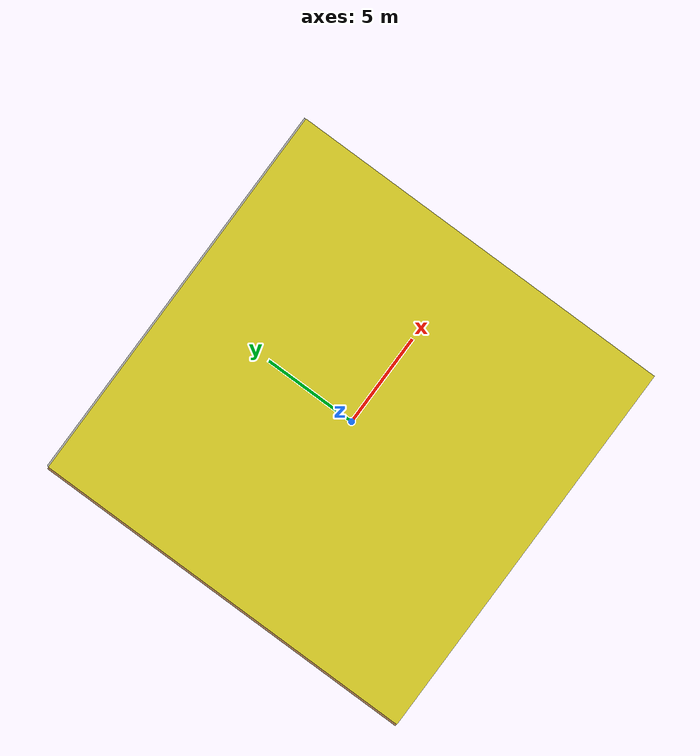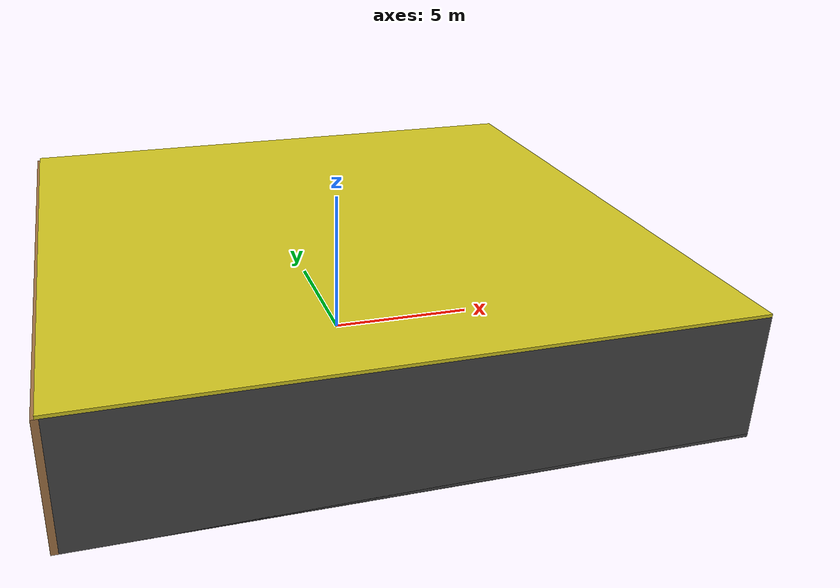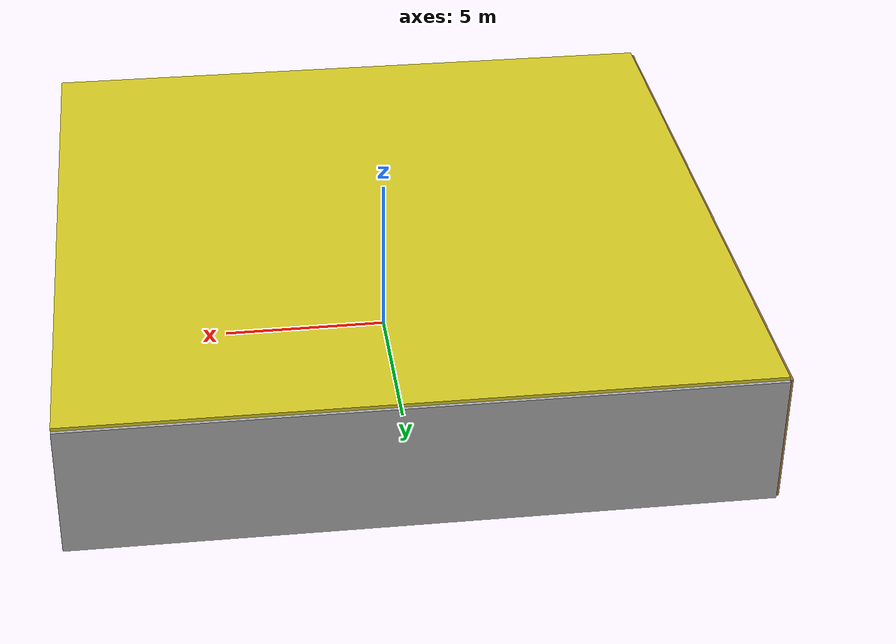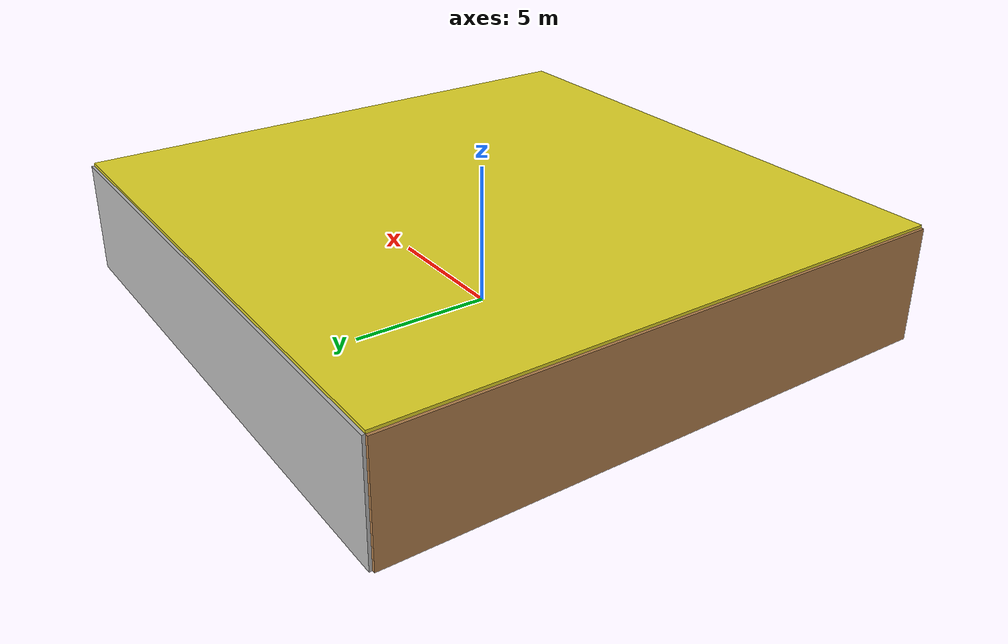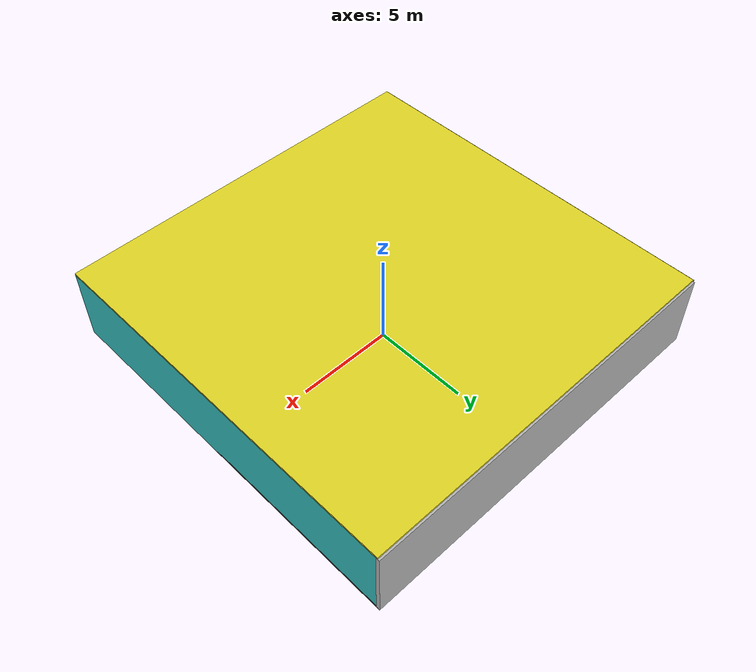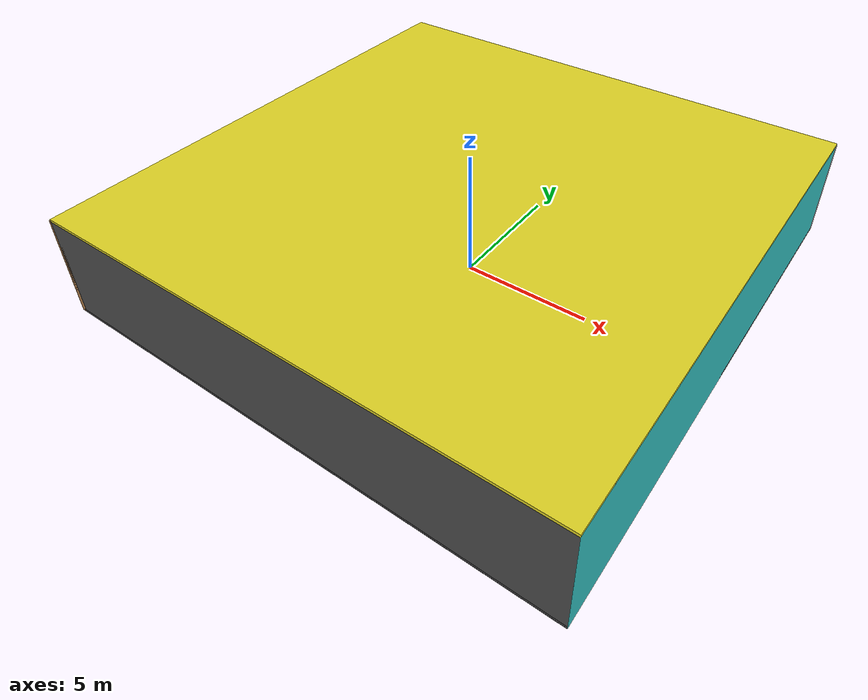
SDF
<sdf version="1.4">
 <world name="default">
  <physics type="ode">
   <max_step_size>0.001</max_step_size>
   <real_time_factor>1</real_time_factor>
   <real_time_update_rate>1000</real_time_update_rate>
   <gravity>0 0 -9.8</gravity>
  </physics>
  <scene><ambient>0.4 0.4 0.4 1</ambient><background>0.7 0.7 0.7 1</background><shadows>1</shadows></scene>
  <model name="Surrounding">
   <static>1</static>
   <link name="Ceiling">
    <collision name="Ceiling_Collision"><geometry><box><size>20 20 0.1</size></box></geometry></collision>
    <visual name="Ceiling_Visual">
     <geometry><box><size>20 20 0.1</size></box></geometry>
     <material>
      <script><uri>file://media/materials/scripts/gazebo.material</uri><name>Gazebo/YellowGlow</name></script>
     </material>
    </visual>
    <pose>0 0 4.05 0 0 0</pose>
   </link>
   <link name="Wall_South">
    <collision name="Wall_South_Collision">
     <geometry><box><size>20 0 4</size></box></geometry>
     <pose>0 0 2 0 -0 0</pose>
    </collision>
    <visual name="Wall_South_Visual">
     <pose>0 0 2 0 -0 0</pose>
     <geometry><box><size>20 0 4</size></box></geometry>
     <material>
      <script><uri>file://media/materials/scripts/gazebo.material</uri><name>Gazebo/Road</name></script>
     </material>
    </visual>
    <velocity_decay><linear>0</linear><angular>0</angular></velocity_decay>
    <pose>0 -10 0 0 -0 0</pose>
   </link>
   <link name="Wall_East">
    <collision name="Wall_21_Collision">
     <geometry><box><size>20 0 4</size></box></geometry>
     <pose>0 0 2 0 -0 0</pose>
    </collision>
    <visual name="Wall_21_Visual">
     <pose>0 0 2 0 -0 0</pose>
     <geometry><box><size>20 0 4</size></box></geometry>
     <material>
      <script>
       <uri>file://media/materials/scripts/gazebo.material</uri>
       <name>Gazebo/TurquoiseGlowOutline</name>
      </script>
     </material>
    </visual>
    <velocity_decay><linear>0</linear><angular>0</angular></velocity_decay>
    <pose>10 0 0 0 -0 1.5708</pose>
   </link>
   <link name="Wall_North">
    <collision name="Wall_22_Collision">
     <geometry><box><size>20 0.2 4</size></box></geometry>
     <pose>0 0 2 0 -0 0</pose>
    </collision>
    <visual name="Wall_22_Visual">
     <pose>0 0 2 0 -0 0</pose>
     <geometry><box><size>20 0.2 4</size></box></geometry>
     <material>
      <script><uri>file://media/materials/scripts/gazebo.material</uri><name>Gazebo/CloudySky</name></script>
     </material>
    </visual>
    <velocity_decay><linear>0</linear><angular>0</angular></velocity_decay>
    <pose>0 10 0 0 -0 0</pose>
   </link>
   <link name="Wall_West">
    <collision name="Wall_23_Collision">
     <geometry><box><size>20 0.2 4</size></box></geometry>
     <pose>0 0 2 0 -0 0</pose>
    </collision>
    <visual name="Wall_23_Visual">
     <pose>0 0 2 0 -0 0</pose>
     <geometry><box><size>20 0.2 4</size></box></geometry>
     <material>
      <script><uri>file://media/materials/scripts/gazebo.material</uri><name>Gazebo/WoodFloor</name></script>
     </material>
    </visual>
    <velocity_decay><linear>0</linear><angular>0</angular></velocity_decay>
    <pose>-10 0 0 0 0 -1.5708</pose>
   </link>
   <link name="Ground_link">
    <collision name="collision">
     <pose>0 0 .05 0 -0 0</pose>
     <geometry><box><size>20 20 0.1</size></box></geometry>
    </collision>
    <visual name="visual">
     <pose>0 0 .05 0 -0 0</pose>
     <geometry><box><size>20 20 0.1</size></box></geometry>
     <material>
      <script><uri>file://media/materials/scripts/gazebo.material</uri><name>Gazebo/DarkGrey</name></script>
     </material>
    </visual>
   </link>
   <static>1</static>
  </model>
  <spherical_coordinates>
   <surface_model>EARTH_WGS84</surface_model>
   <latitude_deg>0</latitude_deg>
   <longitude_deg>0</longitude_deg>
   <elevation>0</elevation>
   <heading_deg>0</heading_deg>
  </spherical_coordinates>
  <light name="lightball_0" type="diffuse">
   <diffuse>0.8 0.8 0.8 1</diffuse>
   <specular>0.2 0.2 0.2 1</specular>
   <attenuation>
    <range>100</range>
    <constant>0.7</constant>
    <linear>0.01</linear>
    <quadratic>0.001</quadratic>
   </attenuation>
   <direction>-0.5 0.1 -0.9</direction>
   <pose>-2.83634456112 5.5011251386 1.73305704949 0 0 0</pose>
  </light>
  <light name="lightball_1" type="diffuse">
   <diffuse>0.8 0.8 0.8 1</diffuse>
   <specular>0.2 0.2 0.2 1</specular>
   <attenuation>
    <range>100</range>
    <constant>0.7</constant>
    <linear>0.01</linear>
    <quadratic>0.001</quadratic>
   </attenuation>
   <direction>-0.5 0.1 -0.9</direction>
   <pose>0.462370310862 7.24904629509 0.998880586428 0 0 0</pose>
  </light>
  <light name="lightball_2" type="diffuse">
   <diffuse>0.8 0.8 0.8 1</diffuse>
   <specular>0.2 0.2 0.2 1</specular>
   <attenuation>
    <range>100</range>
    <constant>0.7</constant>
    <linear>0.01</linear>
    <quadratic>0.001</quadratic>
   </attenuation>
   <direction>-0.5 0.1 -0.9</direction>
   <pose>1.51435477166 -5.00886934535 2.74932796851 0 0 0</pose>
  </light>
  <light name="lightball_3" type="diffuse">
   <diffuse>0.8 0.8 0.8 1</diffuse>
   <specular>0.2 0.2 0.2 1</specular>
   <attenuation>
    <range>100</range>
    <constant>0.7</constant>
    <linear>0.01</linear>
    <quadratic>0.001</quadratic>
   </attenuation>
   <direction>-0.5 0.1 -0.9</direction>
   <pose>-3.15715410942 4.79312250415 2.06535715913 0 0 0</pose>
  </light>
  <light name="lightball_4" type="diffuse">
   <diffuse>0.8 0.8 0.8 1</diffuse>
   <specular>0.2 0.2 0.2 1</specular>
   <attenuation>
    <range>100</range>
    <constant>0.7</constant>
    <linear>0.01</linear>
    <quadratic>0.001</quadratic>
   </attenuation>
   <direction>-0.5 0.1 -0.9</direction>
   <pose>5.51508104333 -6.24590492885 2.56371555337 0 0 0</pose>
  </light>
  <include>
   <uri>model://robocup_3Dsim_goal</uri>
   <pose>-4.81185225852 -6.44057531165 0 0 0 1.28158789357</pose>
  </include>
  <include><uri>model://table</uri><pose>1.32254758335 1.5869161804 0 0 0 2.93403747314</pose></include>
  <include>
   <uri>model://textured_shapes</uri>
   <pose>4.38610244513 -4.08901399762 0 0 0 1.96783892919</pose>
  </include>
  <include>
   <uri>model://textured_shapes</uri>
   <pose>3.88291421187 -1.22709407105 0 0 0 0.980200380917</pose>
  </include>
  <include>
   <uri>model://robocup_3Dsim_goal</uri>
   <pose>8.25533057414 -1.8046249738 0 0 0 1.50854548879</pose>
  </include>
 </world>
</sdf>

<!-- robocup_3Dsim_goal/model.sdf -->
<sdf version="1.5">
  <model name="robocup_3d_goal">
    <static>true</static>
    <link name="left_post">
      <pose>0 1.05 0.45 0 0 0</pose>
      <collision name="collision">
        <geometry>
          <cylinder>
            <radius>0.05</radius>
            <length>0.9</length>
          </cylinder>
        </geometry>
      </collision>
      <visual name="visual">
        <geometry>
          <cylinder>
            <radius>0.05</radius>
            <length>0.9</length>
          </cylinder>
        </geometry>
        <material>
          <script>
            <uri>file://media/materials/scripts/gazebo.material</uri>
            <name>Gazebo/ZincYellow</name>
          </script>
        </material>
      </visual>
    </link>
    <link name="left_support_horiz_lower">
      <pose>0.30 1.05 0.01 0 0 0</pose>
      <collision name="collision">
        <geometry>
          <box>
            <size>0.50 0.02 0.02</size>
          </box>
        </geometry>
      </collision>
      <visual name="visual">
        <geometry>
          <box>
            <size>0.50 0.02 0.02</size>
          </box>
        </geometry>
        <material>
          <script>
            <uri>file://media/materials/scripts/gazebo.material</uri>
            <name>Gazebo/White</name>
          </script>
        </material>
      </visual>
    </link>
    <link name="left_support_horiz_upper">
      <pose>0.30 1.05 0.79 0 0 0</pose>
      <collision name="collision">
        <geometry>
          <box>
            <size>0.50 0.02 0.02</size>
          </box>
        </geometry>
      </collision>
      <visual name="visual">
        <geometry>
          <box>
            <size>0.50 0.02 0.02</size>
          </box>
        </geometry>
        <material>
          <script>
            <uri>file://media/materials/scripts/gazebo.material</uri>
            <name>Gazebo/White</name>
          </script>
        </material>
      </visual>
    </link>
    <link name="left_support_vertical">
      <pose>0.56 1.05 0.4 0 1.5708 0</pose>
      <collision name="collision">
        <geometry>
          <box>
            <size>0.80 0.02 0.02</size>
          </box>
        </geometry>
      </collision>
      <visual name="visual">
        <geometry>
          <box>
            <size>0.80 0.02 0.02</size>
          </box>
        </geometry>
        <material>
          <script>
            <uri>file://media/materials/scripts/gazebo.material</uri>
            <name>Gazebo/White</name>
          </script>
        </material>
      </visual>
    </link>
    <link name="right_support_horiz_lower">
      <pose>0.30 -1.05 0.01 0 0 0</pose>
      <collision name="collision">
        <geometry>
          <box>
            <size>0.50 0.02 0.02</size>
          </box>
        </geometry>
      </collision>
      <visual name="visual">
        <geometry>
          <box>
            <size>0.50 0.02 0.02</size>
          </box>
        </geometry>
        <material>
          <script>
            <uri>file://media/materials/scripts/gazebo.material</uri>
            <name>Gazebo/White</name>
          </script>
        </material>
      </visual>
    </link>
    <link name="right_support_horiz_upper">
      <pose>0.30 -1.05 0.79 0 0 0</pose>
      <collision name="collision">
        <geometry>
          <box>
            <size>0.50 0.02 0.02</size>
          </box>
        </geometry>
      </collision>
      <visual name="visual">
        <geometry>
          <box>
            <size>0.50 0.02 0.02</size>
          </box>
        </geometry>
        <material>
          <script>
            <uri>file://media/materials/scripts/gazebo.material</uri>
            <name>Gazebo/White</name>
          </script>
        </material>
      </visual>
    </link>
    <link name="right_support_vertical">
      <pose>0.56 -1.05 0.4 0 1.5708 0</pose>
      <collision name="collision">
        <geometry>
          <box>
            <size>0.80 0.02 0.02</size>
          </box>
        </geometry>
      </collision>
      <visual name="visual">
        <geometry>
          <box>
            <size>0.80 0.02 0.02</size>
          </box>
        </geometry>
        <material>
          <script>
            <uri>file://media/materials/scripts/gazebo.material</uri>
            <name>Gazebo/White</name>
          </script>
        </material>
      </visual>
    </link>
    <link name="center_support_horiz_lower">
      <pose>0.56 0 0.01 0 1.5708 0</pose>
      <collision name="collision">
        <geometry>
          <box>
            <size>0.02 2.08 0.02</size>
          </box>
        </geometry>
      </collision>
      <visual name="visual">
        <geometry>
          <box>
            <size>0.02 2.08 0.02</size>
          </box>
        </geometry>
        <material>
          <script>
            <uri>file://media/materials/scripts/gazebo.material</uri>
            <name>Gazebo/White</name>
          </script>
        </material>
      </visual>
    </link>
    <link name="center_support_horiz_upper">
      <pose>0.56 0 0.79 0 1.5708 0</pose>
      <collision name="collision">
        <geometry>
          <box>
            <size>0.02 2.08 0.02</size>
          </box>
        </geometry>
      </collision>
      <visual name="visual">
        <geometry>
          <box>
            <size>0.02 2.08 0.02</size>
          </box>
        </geometry>
        <material>
          <script>
            <uri>file://media/materials/scripts/gazebo.material</uri>
            <name>Gazebo/White</name>
          </script>
        </material>
      </visual>
    </link>
    <link name="right_post">
      <pose>0 -1.05 0.45 0 0 0</pose>
      <collision name="collision">
        <geometry>
          <cylinder>
            <radius>0.05</radius>
            <length>0.9</length>
          </cylinder>
        </geometry>
      </collision>
      <visual name="visual">
        <geometry>
          <cylinder>
            <radius>0.05</radius>
            <length>0.9</length>
          </cylinder>
        </geometry>
        <material>
          <script>
            <uri>file://media/materials/scripts/gazebo.material</uri>
            <name>Gazebo/ZincYellow</name>
          </script>
        </material>
      </visual>
    </link>
    <link name="crossbar">
      <pose>0 0 0.85 1.57 1.57 0</pose>
      <collision name="collision">
        <geometry>
          <cylinder>
            <radius>0.05</radius>
            <length>2.0</length>
          </cylinder>
        </geometry>
      </collision>
      <visual name="visual">
        <geometry>
          <cylinder>
            <radius>0.05</radius>
            <length>2.0</length>
          </cylinder>
        </geometry>
        <material>
          <script>
            <uri>file://media/materials/scripts/gazebo.material</uri>
            <name>Gazebo/ZincYellow</name>
          </script>
        </material>
      </visual>
    </link>
    <link name="center_net">
      <pose>0.56 0 0.40 0 0 0</pose>
      <collision name="collision">
        <geometry>
          <box>
            <size>0.01 2.1 0.80</size>
          </box>
        </geometry>
      </collision>
      <visual name="visual">
        <geometry>
          <box>
            <size>0.01 2.1 0.80</size>
          </box>
        </geometry>
        <material>
          <script>
            <uri>model://../model_source/models/robocup09_spl_field/materials/scripts/</uri>
            <uri>model://../model_source/models/robocup09_spl_field/materials/textures/</uri>
            <name>RoboCup/Net</name>
          </script>
        </material>
      </visual>
    </link>
    <link name="left_net">
      <pose>0.30 1.05 0.40 0 0 0</pose>
      <collision name="collision">
        <geometry>
          <box>
            <size>0.50 0.01 0.76</size>
          </box>
        </geometry>
      </collision>
      <visual name="visual">
        <geometry>
          <box>
            <size>0.50 0.01 0.76</size>
          </box>
        </geometry>
        <material>
          <script>
            <uri>model://../model_source/models/robocup09_spl_field/materials/scripts/</uri>
            <uri>model://../model_source/models/robocup09_spl_field/materials/textures/</uri>
            <name>RoboCup/Net</name>
          </script>
        </material>
      </visual>
    </link>
    <link name="right_net">
      <pose>0.30 -1.05 0.40 0 0 0</pose>
      <collision name="collision">
        <geometry>
          <box>
            <size>0.50 0.01 0.76</size>
          </box>
        </geometry>
      </collision>
      <visual name="visual">
        <geometry>
          <box>
            <size>0.50 0.01 0.76</size>
          </box>
        </geometry>
        <material>
          <script>
            <uri>model://../model_source/models/robocup09_spl_field/materials/scripts/</uri>
            <uri>model://../model_source/models/robocup09_spl_field/materials/textures/</uri>
            <name>RoboCup/Net</name>
          </script>
        </material>
      </visual>
    </link>
  </model>
</sdf>

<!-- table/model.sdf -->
<sdf version="1.5">
  <model name="table">
    <static>true</static>
    <link name="link">
      <collision name="surface">
        <pose>0 0 1.0 0 0 0</pose>
        <geometry>
          <box>
            <size>1.5 0.8 0.03</size>
          </box>
        </geometry>
        <surface>
          <friction>
            <ode>
              <mu>0.6</mu>
              <mu2>0.6</mu2>
            </ode>
          </friction>
        </surface>
      </collision>
      <visual name="visual1">
        <pose>0 0 1.0 0 0 0</pose>
        <geometry>
          <box>
            <size>1.5 0.8 0.03</size>
          </box>
        </geometry>
        <material>
          <script>
            <uri>model://media/materials/scripts/gazebo.material</uri>
            <name>Gazebo/Wood</name>
          </script>
        </material>
      </visual>
      <collision name="front_left_leg">
        <pose>0.68 0.38 0.5 0 0 0</pose>
        <geometry>
          <cylinder>
            <radius>0.02</radius>
            <length>1.0</length>
          </cylinder>
        </geometry>
      </collision>
      <visual name="front_left_leg">
        <pose>0.68 0.38 0.5 0 0 0</pose>
        <geometry>
          <cylinder>
            <radius>0.02</radius>
            <length>1.0</length>
          </cylinder>
        </geometry>
        <material>
          <script>
            <uri>model://media/materials/scripts/gazebo.material</uri>
            <name>Gazebo/Grey</name>
          </script>
        </material>
      </visual>
      <collision name="front_right_leg">
        <pose>0.68 -0.38 0.5 0 0 0</pose>
        <geometry>
          <cylinder>
            <radius>0.02</radius>
            <length>1.0</length>
          </cylinder>
        </geometry>
      </collision>
      <visual name="front_right_leg">
        <pose>0.68 -0.38 0.5 0 0 0</pose>
        <geometry>
          <cylinder>
            <radius>0.02</radius>
            <length>1.0</length>
          </cylinder>
        </geometry>
        <material>
          <script>
            <uri>model://media/materials/scripts/gazebo.material</uri>
            <name>Gazebo/Grey</name>
          </script>
        </material>
      </visual>
      <collision name="back_right_leg">
        <pose>-0.68 -0.38 0.5 0 0 0</pose>
        <geometry>
          <cylinder>
            <radius>0.02</radius>
            <length>1.0</length>
          </cylinder>
        </geometry>
      </collision>
      <visual name="back_right_leg">
        <pose>-0.68 -0.38 0.5 0 0 0</pose>
        <geometry>
          <cylinder>
            <radius>0.02</radius>
            <length>1.0</length>
          </cylinder>
        </geometry>
        <material>
          <script>
            <uri>model://media/materials/scripts/gazebo.material</uri>
            <name>Gazebo/Grey</name>
          </script>
        </material>
      </visual>
      <collision name="back_left_leg">
        <pose>-0.68 0.38 0.5 0 0 0</pose>
        <geometry>
          <cylinder>
            <radius>0.02</radius>
            <length>1.0</length>
          </cylinder>
        </geometry>
      </collision>
      <visual name="back_left_leg">
        <pose>-0.68 0.38 0.5 0 0 0</pose>
        <geometry>
          <cylinder>
            <radius>0.02</radius>
            <length>1.0</length>
          </cylinder>
        </geometry>
        <material>
          <script>
            <uri>model://media/materials/scripts/gazebo.material</uri>
            <name>Gazebo/Grey</name>
          </script>
        </material>
      </visual>
    </link>
  </model>
</sdf>

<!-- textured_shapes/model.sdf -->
<sdf version="1.6">
  <model name="textured_shapes">
    <pose>0 0 0.5 0 0 0</pose>
    <link name="box">
      <pose>0 -1.5 0 0 0 0</pose>
      <collision name="collision">
        <geometry>
          <box>
            <size>1 1 1</size>
          </box>
        </geometry>
      </collision>
      <visual name="visual">
        <geometry>
          <box>
            <size>1 1 1</size>
          </box>
        </geometry>
        <material>
          <script>
            <uri>model://../model_source/models/textured_shapes/materials/scripts</uri>
            <uri>model://../model_source/models/textured_shapes/materials/textures</uri>
            <name>TexturedShape/Squares</name>
          </script>
        </material>
      </visual>
    </link>
    <link name="sphere">
      <collision name="collision">
        <geometry>
          <sphere>
            <radius>0.5</radius>
          </sphere>
        </geometry>
      </collision>
      <visual name="visual">
        <geometry>
          <sphere>
            <radius>0.5</radius>
          </sphere>
        </geometry>
        <material>
          <script>
            <uri>model://../model_source/models/textured_shapes/materials/scripts</uri>
            <uri>model://../model_source/models/textured_shapes/materials/textures</uri>
            <name>TexturedShape/Squares</name>
          </script>
        </material>
      </visual>
    </link>
    <link name="cylinder">
      <pose>0 1.5 0 0 0 0</pose>
      <collision name="collision">
        <geometry>
          <cylinder>
            <radius>0.5</radius>
            <length>1</length>
          </cylinder>
        </geometry>
      </collision>
      <visual name="visual">
        <geometry>
          <cylinder>
            <radius>0.5</radius>
            <length>1</length>
          </cylinder>
        </geometry>
        <material>
          <script>
            <uri>model://../model_source/models/textured_shapes/materials/scripts</uri>
            <uri>model://../model_source/models/textured_shapes/materials/textures</uri>
            <name>TexturedShape/Squares</name>
          </script>
        </material>
      </visual>
    </link>
  </model>
</sdf>
